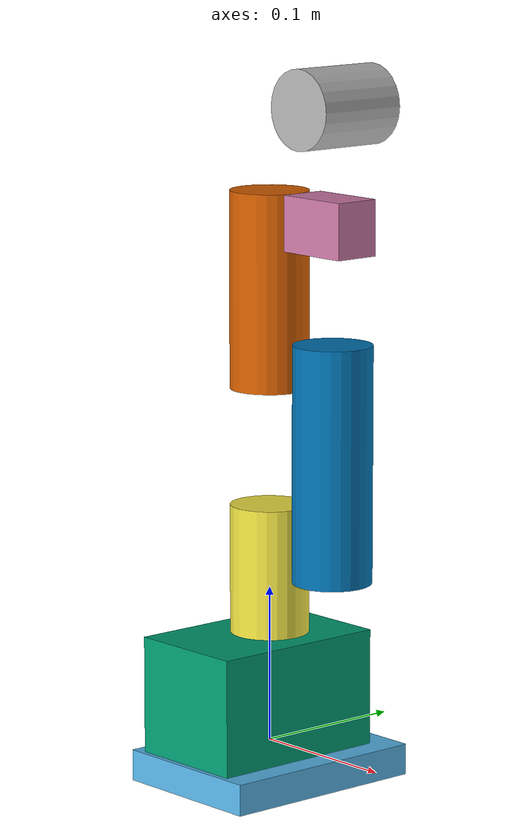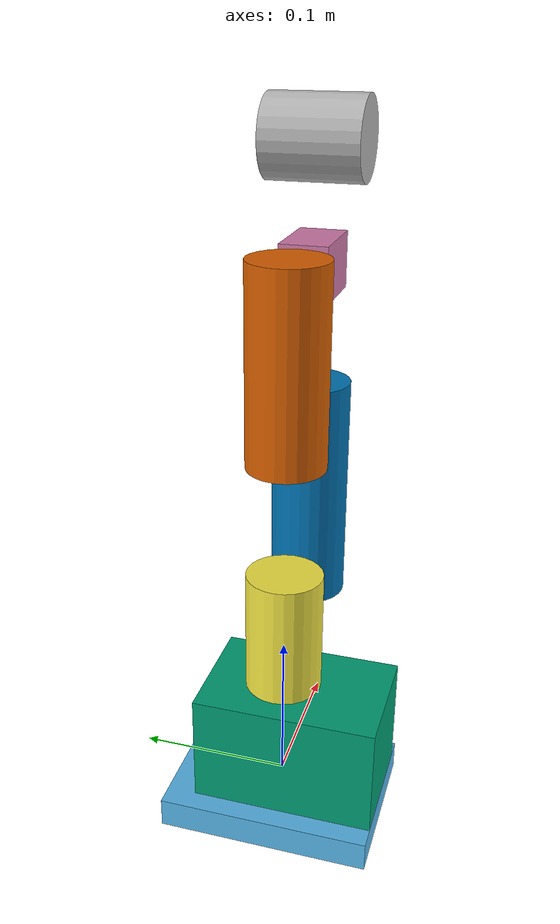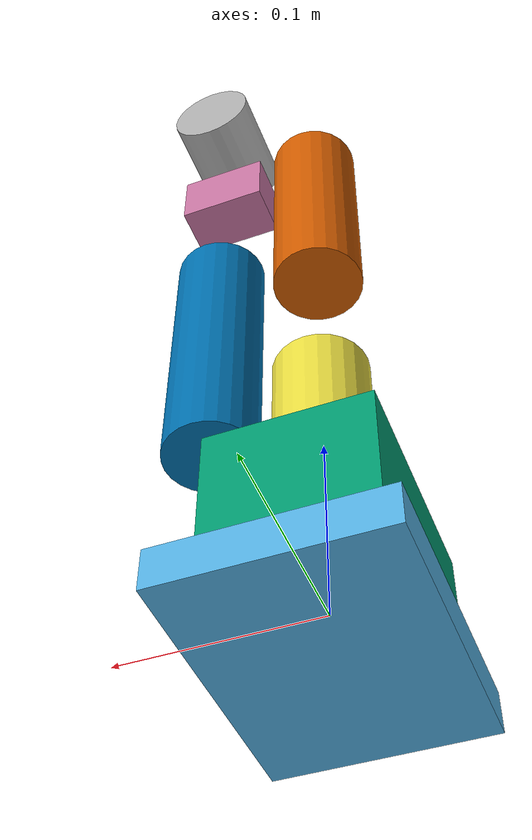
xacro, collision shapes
<?xml version="1.0" ?>
<robot xmlns:xacro="http://wiki.ros.org/xacro" name="mycobot_320">

	<!-- Reference Files: https://github.com/elephantrobotics/mycobot_ros/ -->

	<!-- Provide a global reference frame for the robotic arm in simulation (Gazebo)
		or visualization (RViz) environments
	-->
	<link name="world"/>

	<!-- ****************** ROBOT CONSTANTS *******************************  -->
	<!-- Source: https://www.elephantrobotics.com/en/mycobot280-for-arduino-specifications-en/ -->
	<!-- Numbers are estimated when necessary -->
	<xacro:property name="effort" value="5.0"/>
	<xacro:property name="velocity" value="2.792527"/>

	<!-- ********** LINKS ********** -->

    <!-- Define the base plate of the robotic arm -->
	<link name="base_link">
		<!-- The inertial values below were taken from link1 (with slight modification.
		They are just placeholder values. -->
		<inertial>
			<origin xyz="0 0 0.0" rpy="0 0 0"/>
			<mass value="0.33"/>
			<inertia
				ixx="0.000784" ixy="0.0" ixz="0.0"
				iyy="0.000867" iyz="0.0"
				izz="0.001598"/>
		</inertial>
		<visual>
			<geometry>
				<mesh filename="file:///home/anel/GitHub/pick_and_place_ros/anel_ws/mycobot_ros2_description/mesh/mycobot_320/base.dae"/>
			</geometry>
			<origin xyz = "0.0 0 -0.03" rpy = "0 0 ${pi/2}"/>
		</visual>
		<collision>
			<geometry>
				<box size="0.105 0.14 0.02"/>
			</geometry>
			<origin xyz = "0.0 0 -0.015" rpy = "0 0 0"/>
		</collision>
	</link>

	<!--Define the first link of the robotic arm. Each link represents a solid part of the robot.-->
	<link name="link1">
		<!--Define the inertial properties of the link, which characterizes the link's resistance
		to changes in its rotational motion.-->
		<inertial>
			<!--Specify the pose of the center of mass of the link relative
			to this link's coordinate frame.-->
			<origin xyz="0 0 0.0" rpy="0 0 0"/>
			<!--The mass of the link in kilograms-->
			<mass value="0.12"/>
			<inertia
				ixx="0.000148" ixy="0.0" ixz="0.0"
				iyy="0.000148" iyz="0.0"
				izz="0.000096"/>
		</inertial>
		<!--Define the visual representation of the link in simulation.-->
		<visual>
			<!--Define the shape of the link-->
			<geometry>
				<!--Specify the link's visual appearance using the 3D mesh file.-->
				<mesh filename="file:///home/anel/GitHub/pick_and_place_ros/anel_ws/mycobot_ros2_description/mesh/mycobot_320/link1.dae"/>
			</geometry>
			<!--Define the position and orientation of the visual representation relative to the
			link's reference frame. Here, it's rotated by -1.5708 radians (or -90 degrees)
			around the Z-axis.-->
			<origin xyz = "0.0 0 0 " rpy = " 0 0 ${-pi/2}"/>
		</visual>
		<!--Define the shape used for collision detection during simulation. This piece is important
		for accurate physical interactions between robot components and the environment or other objects.-->
		<collision>
			<geometry>
			     <box size="0.08 0.12 0.075"/>
			</geometry>
			<origin xyz = "0.0 -0.01 0.034" rpy = " 0 0 0"/>
		</collision>
	</link>

	<!-- Define the second link of the robotic arm, and so on.-->
	<link name="link2">
		<inertial>
			<origin xyz="0 0 0.0" rpy="0 0 0"/>
			<mass value="0.19"/>
			<inertia
				ixx="0.000148" ixy="0.0" ixz="0.0"
				iyy="0.000148" iyz="0.0"
				izz="0.000096"/>
		</inertial>
		<visual>
			<geometry>
				<mesh filename="file:///home/anel/GitHub/pick_and_place_ros/anel_ws/mycobot_ros2_description/mesh/mycobot_320/link2.dae"/>
			</geometry>
			<origin xyz = "0.0 0 -0.06096" rpy = " 0 0 ${-pi/2}"/>
		</visual>
		<collision>
			<geometry>
				<cylinder radius="0.025" length="0.085"/>
			</geometry>
			<origin xyz = "0.0 0 -0.02" rpy = " 0 0 ${-pi/2}"/>
		</collision>
	</link>

	<link name="link3">
		<inertial>
			<origin xyz="0 0 0.0" rpy="0 0 0"/>
		  	<mass value="0.16"/>
			<inertia
			  ixx="0.000148" ixy="0.0" ixz="0.0"
			  iyy="0.000148" iyz="0.0"
			  izz="0.000096"/>
		</inertial>
		<visual>
		  	<geometry>
		   		<mesh filename="file:///home/anel/GitHub/pick_and_place_ros/anel_ws/mycobot_ros2_description/mesh/mycobot_320/link3.dae"/>
		  	</geometry>
			<origin xyz = "0.0 0 0.03256 " rpy = " 0 ${-pi/2} 0"/>
		</visual>
		<collision>
			<geometry>
				<cylinder radius="0.025" length="0.15"/>
			</geometry>
			<origin xyz = "-0.058 0 0.059" rpy = "0 ${-pi/2} 0"/>
		</collision>
	</link>

	<link name="link4">
		<inertial>
		  	<origin xyz="0 0 0.0" rpy="0 0 0"/>
			<mass value="0.124"/>
			<inertia
			  	ixx="0.000103" ixy="0.0" ixz="0.0"
			  	iyy="0.000103" iyz="0.0"
			  	izz="0.000096"/>
		</inertial>
		<visual>
			<geometry>
				<mesh filename="file:///home/anel/GitHub/pick_and_place_ros/anel_ws/mycobot_ros2_description/mesh/mycobot_320/link4.dae"/>
			</geometry>
			<origin xyz = "0.0 0 0.03056 " rpy = " 0 ${-pi/2} 0"/>
		</visual>
		<collision>
			<geometry>
				<cylinder radius="0.025" length="0.125"/>
			</geometry>
			<origin xyz = "-0.05 0 0.0" rpy = "0 ${-pi/2} 0"/>
		</collision>
	</link>

	<link name="link5">
		<inertial>
			<origin xyz="0 0 0.0" rpy="0 0 0"/>
		  	<mass value="0.11"/>
			<inertia
			  ixx="0.000103" ixy="0.0" ixz="0.0"
			  iyy="0.000103" iyz="0.0"
			  izz="0.000096"/>
		</inertial>
		<visual>
		  	<geometry>
				<mesh filename="file:///home/anel/GitHub/pick_and_place_ros/anel_ws/mycobot_ros2_description/mesh/mycobot_320/link5.dae"/>
		  	</geometry>
		  	<origin xyz = "0.0 0 -0.03356 " rpy = "${-pi/2} 0 0"/>
		</visual>
		<collision>
			<geometry>
				<box size="0.03 0.035 0.05"/>
			</geometry>
			<origin xyz = "0.0 0 -0.005" rpy = "0 0.0 0"/>
		</collision>
	</link>

	<link name="link6">
		<inertial>
			<origin xyz="0 0 0.0" rpy="0 0 0"/>
		  	<mass value="0.0739"/>
			<inertia
			  ixx="0.00006649" ixy="0.0" ixz="0.0"
			  iyy="0.00006649" iyz="0.0"
			  izz="0.000096"/>
		</inertial>
		<visual>
		  	<geometry>
				<mesh filename="file:///home/anel/GitHub/pick_and_place_ros/anel_ws/mycobot_ros2_description/mesh/mycobot_320/link6.dae"/>
		  	</geometry>
		  	<origin xyz = "0 0.00 -0.038" rpy = "0 0 0"/>
		</visual>
		<collision>
		   	<geometry>
		   		<cylinder radius="0.025" length="0.06"/>
		  	</geometry>
		  	<origin xyz = "0 0.00 0.0" rpy = "${-pi/2} 0 0"/>
		</collision>
	</link>

	<!-- ********** JOINTS ********** -->

	<!-- Attach the robot base to the world frame with no initial offset or rotation. -->
	<joint name="virtual_joint" type="fixed">
		<parent link="world"/>
		<child link="base_link"/>
		<origin xyz= "0 0 0" rpy = "0 0 0"/>
	</joint>

	<!-- Define the joint name and its type as "fixed". A fixed joint
	means the two connected links cannot move relative to each other. -->
	<joint name="base_link_to_link1" type="fixed">
		<!-- Specifies the axis around which the joint could rotate if it wasn't fixed. -->
		<axis xyz="0 0 0"/>
		<limit effort = "${effort}" lower = "${-pi}" upper = "${pi}" velocity = "${velocity}"/>
		<!-- The link this joint connects to on one side -->
		<parent link="base_link"/>
		<!-- The link this joint connects to on the other side -->
		<child link="link1"/>
		<origin xyz= "0 0 0" rpy = "0 0 0"/>
	</joint>

	<joint name="link1_to_link2" type="revolute">
		<axis xyz="0 0 1"/>
		<limit effort = "${effort}" lower = "-2.879793" upper = "2.879793" velocity = "${velocity}"/>
		<parent link="link1"/>
		<child link="link2"/>
		<origin xyz= "0 0 0.13156" rpy = "0 0 ${pi/2}"/>
	</joint>

	<joint name="link2_to_link3" type="revolute">
		<axis xyz="0 0 1"/>
		<limit effort = "${effort}" lower = "-2.879793" upper = "2.879793" velocity = "${velocity}"/>
		<parent link="link2"/>
		<child link="link3"/>
		<origin xyz= "0 0 -0.001" rpy = "0 ${pi/2} ${-pi/2}"/>
	</joint>

	<joint name="link3_to_link4" type="revolute">
		<axis xyz=" 0 0 1"/>
		<limit effort = "${effort}" lower = "-2.879793" upper = "2.879793" velocity = "${velocity}"/>
		<parent link="link3"/>
		<child link="link4"/>
		<origin xyz= "-0.1104 0 0   " rpy = "0 0 0"/>
	</joint>

	<joint name="link4_to_link5" type="revolute">
		<axis xyz=" 0 0 1"/>
		<limit effort = "${effort}" lower = "-2.879793" upper = "2.879793" velocity = "${velocity}"/>
		<parent link="link4"/>
		<child link="link5"/>
		<origin xyz= "-0.096 0 0.06062" rpy = "0 0 ${-pi/2}"/>
	</joint>

	<joint name="link5_to_link6" type="revolute">
		<axis xyz=" 0 0 1"/>
		<limit effort = "${effort}" lower = "-2.879793" upper = "2.879793" velocity = "${velocity}"/>
		<parent link="link5"/>
		<child link="link6"/>
		<origin xyz= "0 -0.07318 0" rpy = "${pi/2} ${-pi/2} 0"/>
	</joint>

	<!-- The mimic element means this joint will follow the movements of the
		gripper_controller joint.
	-->

</robot>
